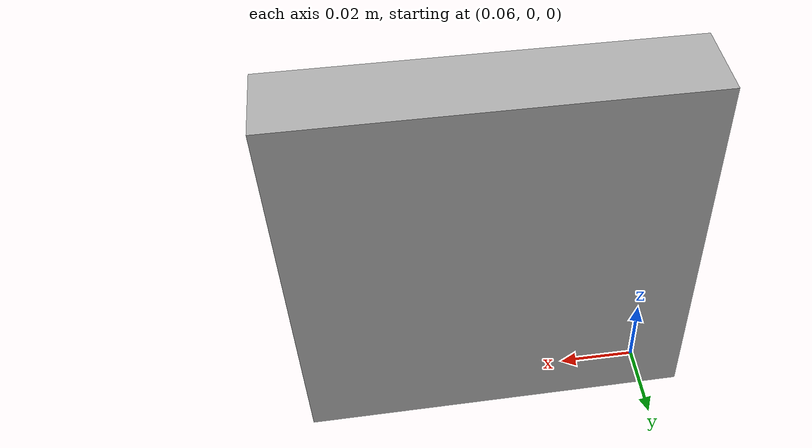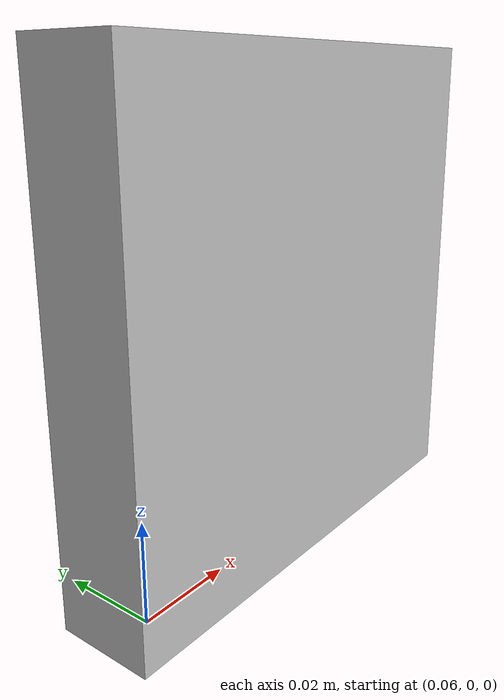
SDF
<?xml version="1.0" ?>
<sdf version="1.8">
  <world name="gripper_world">
    <model name="simple_gripper">
      <!-- Base (Static part of the gripper) -->
      <link name="base">
        <pose>0 0 0.05 0 0 0</pose>
        <inertial>
          <mass>0.5</mass>
        </inertial>
      </link>

      <!-- Moving Finger (Using prismatic joint) -->
      <link name="moving_finger">
        <pose>0.1 0 0.05 0 0 0</pose>
        <inertial>
          <mass>0.1</mass>
        </inertial>
        <collision name="collision">
          <geometry>
            <box>
              <size>0.1 0.02 0.1</size>
            </box>
          </geometry>
        </collision>
        <visual name="visual">
          <geometry>
            <box>
              <size>0.1 0.02 0.1</size>
            </box>
          </geometry>
        </visual>
      </link>

      <!-- Prismatic Joint (for moving the finger linearly) -->
      <joint name="finger_slide_joint" type="prismatic">
        <parent>base</parent>
        <child>moving_finger</child>
        <axis>
          <limit>
            <lower>0</lower>
            <upper>0.05</upper>
          </limit>
          <xyz>1 0 0</xyz>
          <dynamics>
            <friction>0.5</friction>
          </dynamics>
        </axis>
      </joint>

      <!-- The gripper definition (to specify which links participate in gripping) -->
      <gripper name="simple_gripper">
        <gripper_link>moving_finger</gripper_link>
        <palm_link>base</palm_link>
      </gripper>
    </model>
  </world>
</sdf>
